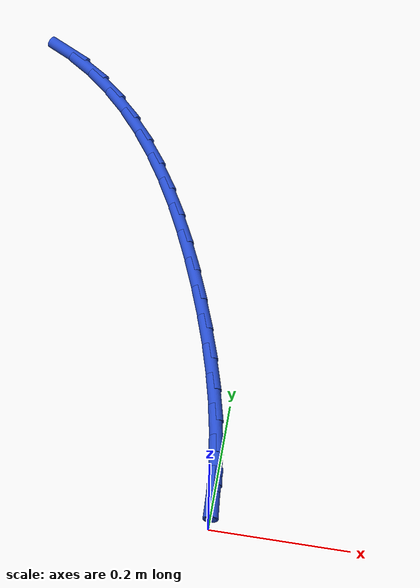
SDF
<sdf version="1.6">
 <world name="default">
  <model name="ground_plane">
   <static>1</static>
   <link name="link">
    <collision name="collision">
     <geometry><plane><normal>0 0 1</normal><size>100 100</size></plane></geometry>
     <surface><friction><ode><mu>100</mu><mu2>50</mu2></ode></friction></surface>
    </collision>
    <visual name="visual">
     <cast_shadows>0</cast_shadows>
     <geometry><plane><normal>0 0 1</normal><size>100 100</size></plane></geometry>
     <material>
      <script><uri>file://media/materials/scripts/gazebo.material</uri><name>Gazebo/WhiteGlow</name></script>
     </material>
    </visual>
   </link>
  </model>
  <model name="line">
   <link name="link_1">
    <pose>-0.0019267832978807043 0.05100945819266871 0.01 0 1.57 -1.4757168661922142</pose>
    <collision name="collision">
     <geometry><cylinder><radius>0.01</radius><length>0.08</length></cylinder></geometry>
    </collision>
    <visual name="visual">
     <material>
      <script><name>Gazebo/Blue</name><uri>file://media/materials/scripts/gazebo.material</uri></script>
     </material>
     <geometry><cylinder><radius>0.01</radius><length>0.08</length></cylinder></geometry>
    </visual>
   </link>
   <link name="link_2">
    <pose>-0.006780246610819949 0.10190193475541207 0.01 0 1.57 -1.4226484117235143</pose>
    <collision name="collision">
     <geometry><cylinder><radius>0.01</radius><length>0.08</length></cylinder></geometry>
    </collision>
    <visual name="visual">
     <material>
      <script><name>Gazebo/Blue</name><uri>file://media/materials/scripts/gazebo.material</uri></script>
     </material>
     <geometry><cylinder><radius>0.01</radius><length>0.08</length></cylinder></geometry>
    </visual>
   </link>
   <link name="link_3">
    <pose>-0.014361618773334023 0.15270134025614557 0.01 0 1.57 -1.374074464920237</pose>
    <collision name="collision">
     <geometry><cylinder><radius>0.01</radius><length>0.08</length></cylinder></geometry>
    </collision>
    <visual name="visual">
     <material>
      <script><name>Gazebo/Blue</name><uri>file://media/materials/scripts/gazebo.material</uri></script>
     </material>
     <geometry><cylinder><radius>0.01</radius><length>0.08</length></cylinder></geometry>
    </visual>
   </link>
   <link name="link_4">
    <pose>-0.02447212861993922 0.20343158526278443 0.01 0 1.57 -1.3301000333956121</pose>
    <collision name="collision">
     <geometry><cylinder><radius>0.01</radius><length>0.08</length></cylinder></geometry>
    </collision>
    <visual name="visual">
     <material>
      <script><name>Gazebo/Blue</name><uri>file://media/materials/scripts/gazebo.material</uri></script>
     </material>
     <geometry><cylinder><radius>0.01</radius><length>0.08</length></cylinder></geometry>
    </visual>
   </link>
   <link name="link_5">
    <pose>-0.036913004985151834 0.254116580343244 0.01 0 1.57 -1.2907248943532754</pose>
    <collision name="collision">
     <geometry><cylinder><radius>0.01</radius><length>0.08</length></cylinder></geometry>
    </collision>
    <visual name="visual">
     <material>
      <script><name>Gazebo/Blue</name><uri>file://media/materials/scripts/gazebo.material</uri></script>
     </material>
     <geometry><cylinder><radius>0.01</radius><length>0.08</length></cylinder></geometry>
    </visual>
   </link>
   <link name="link_6">
    <pose>-0.05148547670348817 0.30478023606543964 0.01 0 1.57 -1.255872444186396</pose>
    <collision name="collision">
     <geometry><cylinder><radius>0.01</radius><length>0.08</length></cylinder></geometry>
    </collision>
    <visual name="visual">
     <material>
      <script><name>Gazebo/Blue</name><uri>file://media/materials/scripts/gazebo.material</uri></script>
     </material>
     <geometry><cylinder><radius>0.01</radius><length>0.08</length></cylinder></geometry>
    </visual>
   </link>
   <link name="link_7">
    <pose>-0.06799077260946451 0.35544646299728655 0.01 0 1.57 -1.2254158493264087</pose>
    <collision name="collision">
     <geometry><cylinder><radius>0.01</radius><length>0.08</length></cylinder></geometry>
    </collision>
    <visual name="visual">
     <material>
      <script><name>Gazebo/Blue</name><uri>file://media/materials/scripts/gazebo.material</uri></script>
     </material>
     <geometry><cylinder><radius>0.01</radius><length>0.08</length></cylinder></geometry>
    </visual>
   </link>
   <link name="link_8">
    <pose>-0.0862301215375972 0.4061391717067002 0.01 0 1.57 -1.1976445312591981</pose>
    <collision name="collision">
     <geometry><cylinder><radius>0.01</radius><length>0.08</length></cylinder></geometry>
    </collision>
    <visual name="visual">
     <material>
      <script><name>Gazebo/Blue</name><uri>file://media/materials/scripts/gazebo.material</uri></script>
     </material>
     <geometry><cylinder><radius>0.01</radius><length>0.08</length></cylinder></geometry>
    </visual>
   </link>
   <link name="link_9">
    <pose>-0.10606490799226363 0.4568035724961708 0.01 0 1.57 -1.1658548527337567</pose>
    <collision name="collision">
     <geometry><cylinder><radius>0.01</radius><length>0.08</length></cylinder></geometry>
    </collision>
    <visual name="visual">
     <material>
      <script><name>Gazebo/Blue</name><uri>file://media/materials/scripts/gazebo.material</uri></script>
     </material>
     <geometry><cylinder><radius>0.01</radius><length>0.08</length></cylinder></geometry>
    </visual>
   </link>
   <link name="link_10">
    <pose>-0.1276057963725649 0.5070587485728495 0.01 0 1.57 -1.1279025546585217</pose>
    <collision name="collision">
     <geometry><cylinder><radius>0.01</radius><length>0.08</length></cylinder></geometry>
    </collision>
    <visual name="visual">
     <material>
      <script><name>Gazebo/Blue</name><uri>file://media/materials/scripts/gazebo.material</uri></script>
     </material>
     <geometry><cylinder><radius>0.01</radius><length>0.08</length></cylinder></geometry>
    </visual>
   </link>
   <link name="link_11">
    <pose>-0.15102801265810506 0.5564393187279231 0.01 0 1.57 -1.083157277274956</pose>
    <collision name="collision">
     <geometry><cylinder><radius>0.01</radius><length>0.08</length></cylinder></geometry>
    </collision>
    <visual name="visual">
     <material>
      <script><name>Gazebo/Blue</name><uri>file://media/materials/scripts/gazebo.material</uri></script>
     </material>
     <geometry><cylinder><radius>0.01</radius><length>0.08</length></cylinder></geometry>
    </visual>
   </link>
   <link name="link_12">
    <pose>-0.17650678293041266 0.6044799016192317 0.01 0 1.57 -1.0308632642735505</pose>
    <collision name="collision">
     <geometry><cylinder><radius>0.01</radius><length>0.08</length></cylinder></geometry>
    </collision>
    <visual name="visual">
     <material>
      <script><name>Gazebo/Blue</name><uri>file://media/materials/scripts/gazebo.material</uri></script>
     </material>
     <geometry><cylinder><radius>0.01</radius><length>0.08</length></cylinder></geometry>
    </visual>
   </link>
   <link name="link_13">
    <pose>-0.2042173332710161 0.6507151159046158 0.01 0 1.57 -0.9701791857934083</pose>
    <collision name="collision">
     <geometry><cylinder><radius>0.01</radius><length>0.08</length></cylinder></geometry>
    </collision>
    <visual name="visual">
     <material>
      <script><name>Gazebo/Blue</name><uri>file://media/materials/scripts/gazebo.material</uri></script>
     </material>
     <geometry><cylinder><radius>0.01</radius><length>0.08</length></cylinder></geometry>
    </visual>
   </link>
   <link name="link_14">
    <pose>-0.2343348897614441 0.6946795802419162 0.01 0 1.57 -0.9002530958229978</pose>
    <collision name="collision">
     <geometry><cylinder><radius>0.01</radius><length>0.08</length></cylinder></geometry>
    </collision>
    <visual name="visual">
     <material>
      <script><name>Gazebo/Blue</name><uri>file://media/materials/scripts/gazebo.material</uri></script>
     </material>
     <geometry><cylinder><radius>0.01</radius><length>0.08</length></cylinder></geometry>
    </visual>
   </link>
   <link name="link_15">
    <pose>-0.26703467848322504 0.735907913288973 0.01 0 1.57 -0.8203516836143352</pose>
    <collision name="collision">
     <geometry><cylinder><radius>0.01</radius><length>0.08</length></cylinder></geometry>
    </collision>
    <visual name="visual">
     <material>
      <script><name>Gazebo/Blue</name><uri>file://media/materials/scripts/gazebo.material</uri></script>
     </material>
     <geometry><cylinder><radius>0.01</radius><length>0.08</length></cylinder></geometry>
    </visual>
   </link>
   <link name="link_16">
    <pose>-0.30249192551788756 0.773934733703627 0.01 0 1.57 -0.7300593564254582</pose>
    <collision name="collision">
     <geometry><cylinder><radius>0.01</radius><length>0.08</length></cylinder></geometry>
    </collision>
    <visual name="visual">
     <material>
      <script><name>Gazebo/Blue</name><uri>file://media/materials/scripts/gazebo.material</uri></script>
     </material>
     <geometry><cylinder><radius>0.01</radius><length>0.08</length></cylinder></geometry>
    </visual>
   </link>
   <link name="link_17">
    <pose>-0.34088185694696016 0.8082946601437184 0.01 0 1.57 -0.6295429983004225</pose>
    <collision name="collision">
     <geometry><cylinder><radius>0.01</radius><length>0.08</length></cylinder></geometry>
    </collision>
    <visual name="visual">
     <material>
      <script><name>Gazebo/Blue</name><uri>file://media/materials/scripts/gazebo.material</uri></script>
     </material>
     <geometry><cylinder><radius>0.01</radius><length>0.08</length></cylinder></geometry>
    </visual>
   </link>
   <link name="link_18">
    <pose>-0.3823796988519716 0.8385223112670882 0.01 0 1.57 -0.519833749858481</pose>
    <collision name="collision">
     <geometry><cylinder><radius>0.01</radius><length>0.08</length></cylinder></geometry>
    </collision>
    <visual name="visual">
     <material>
      <script><name>Gazebo/Blue</name><uri>file://media/materials/scripts/gazebo.material</uri></script>
     </material>
     <geometry><cylinder><radius>0.01</radius><length>0.08</length></cylinder></geometry>
    </visual>
   </link>
   <link name="link_151">
    <pose>-0.0019806647596851117 0.05099187256528562 0.01 0 1.57 -1.5319730899681747</pose>
    <collision name="collision">
     <geometry><cylinder><radius>0.01</radius><length>0.08</length></cylinder></geometry>
    </collision>
    <visual name="visual">
     <material>
      <script><name>Gazebo/Blue</name><uri>file://media/materials/scripts/gazebo.material</uri></script>
     </material>
     <geometry><cylinder><radius>0.01</radius><length>0.08</length></cylinder></geometry>
    </visual>
   </link>
  </model>
 </world>
</sdf>
